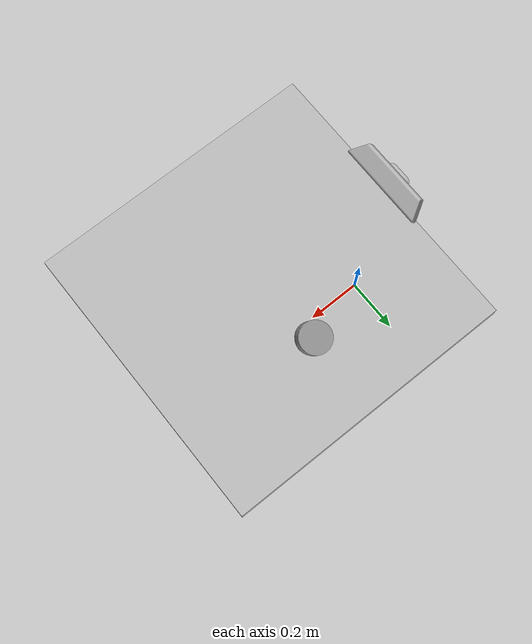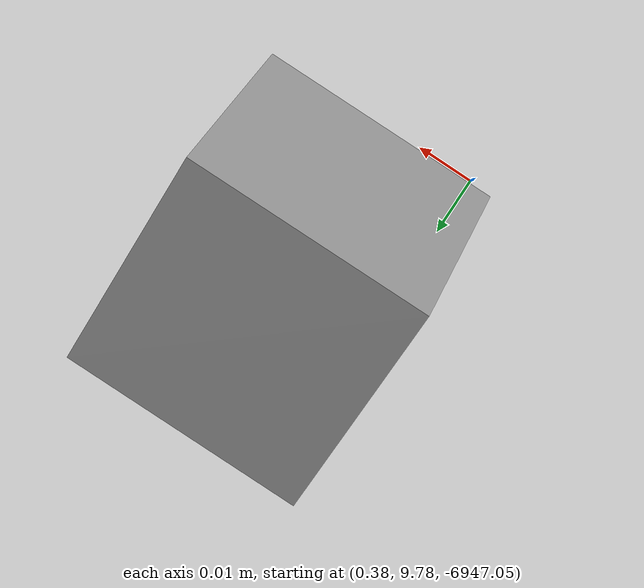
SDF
<sdf version="1.6">
 <world name="default">
  <light name="sun" type="directional">
   <pose>0 0 10 0 -0 0</pose>
   <diffuse>0.8 0.8 0.8 1</diffuse>
   <specular>0.1 0.1 0.1 1</specular>
   <attenuation>
    <range>1000</range>
    <constant>0.9</constant>
    <linear>0.01</linear>
    <quadratic>0.001</quadratic>
   </attenuation>
   <direction>-0.5 0.5 -1</direction>
  </light>
  <gravity>0 0 -9.8</gravity>
  <magnetic_field>6e-06 2.3e-05 -4.2e-05</magnetic_field>
  <atmosphere type="adiabatic"/>
  <physics name="default_physics" default="0" type="ode">
   <max_step_size>0.001</max_step_size>
   <real_time_factor>1</real_time_factor>
   <real_time_update_rate>1000</real_time_update_rate>
  </physics>
  <scene><ambient>0.4 0.4 0.4 1</ambient><background>0.7 0.7 0.7 1</background><shadows>1</shadows></scene>
  <spherical_coordinates>
   <surface_model>EARTH_WGS84</surface_model>
   <latitude_deg>0</latitude_deg>
   <longitude_deg>0</longitude_deg>
   <elevation>0</elevation>
   <heading_deg>0</heading_deg>
  </spherical_coordinates>
  <model name="kinect_ros">
   <link name="link">
    <inertial>
     <mass>0.1</mass>
     <inertia><ixx>1</ixx><ixy>0</ixy><ixz>0</ixz><iyy>1</iyy><iyz>0</iyz><izz>1</izz></inertia>
    </inertial>
    <sensor name="camera" type="depth">
     <update_rate>20</update_rate>
     <camera name="__default__">
      <horizontal_fov>1.0472</horizontal_fov>
      <image><width>640</width><height>480</height><format>R8G8B8</format></image>
      <clip><near>0.05</near><far>3</far></clip>
     </camera>
     <plugin name="camera_plugin" filename="libgazebo_ros_openni_kinect.so">
      <baseline>0.2</baseline>
      <alwaysOn>true</alwaysOn>
      <updateRate>0.0</updateRate>
      <cameraName>camera_ir</cameraName>
      <imageTopicName>/camera/depth/image_raw</imageTopicName>
      <cameraInfoTopicName>/camera/depth/camera_info</cameraInfoTopicName>
      <depthImageTopicName>/camera/depth/image_raw</depthImageTopicName>
      <depthImageInfoTopicName>/camera/depth/camera_info</depthImageInfoTopicName>
      <pointCloudTopicName>/camera/depth/points</pointCloudTopicName>
      <frameName>camera_link</frameName>
      <pointCloudCutoff>0.05</pointCloudCutoff>
      <distortionK1>0</distortionK1>
      <distortionK2>0</distortionK2>
      <distortionK3>0</distortionK3>
      <distortionT1>0</distortionT1>
      <distortionT2>0</distortionT2>
      <CxPrime>0</CxPrime>
      <Cx>0</Cx>
      <Cy>0</Cy>
      <focalLength>0</focalLength>
      <hackBaseline>0</hackBaseline>
     </plugin>
    </sensor>
    <visual name="visual">
     <geometry><mesh><uri>model://kinect/meshes/kinect.dae</uri><scale>1 1 1</scale></mesh></geometry>
    </visual>
    <collision name="collision">
     <geometry><box><size>0.073 0.276 0.072</size></box></geometry>
     <surface>
      <friction>
       <ode><mu>1</mu><mu2>1</mu2><fdir1>0 0 0</fdir1><slip1>0</slip1><slip2>0</slip2></ode>
       <torsional>
        <coefficient>1</coefficient>
        <patch_radius>0</patch_radius>
        <surface_radius>0</surface_radius>
        <use_patch_radius>1</use_patch_radius>
        <ode><slip>0</slip></ode>
       </torsional>
      </friction>
      <bounce><restitution_coefficient>0</restitution_coefficient><threshold>1e+06</threshold></bounce>
      <contact>
       <collide_without_contact>0</collide_without_contact>
       <collide_without_contact_bitmask>1</collide_without_contact_bitmask>
       <collide_bitmask>1</collide_bitmask>
       <ode>
        <soft_cfm>0</soft_cfm>
        <soft_erp>0.2</soft_erp>
        <kp>1e+13</kp>
        <kd>1</kd>
        <max_vel>0.01</max_vel>
        <min_depth>0</min_depth>
       </ode>
       <bullet>
        <split_impulse>1</split_impulse>
        <split_impulse_penetration_threshold>-0.01</split_impulse_penetration_threshold>
        <soft_cfm>0</soft_cfm>
        <soft_erp>0.2</soft_erp>
        <kp>1e+13</kp>
        <kd>1</kd>
       </bullet>
      </contact>
     </surface>
    </collision>
   </link>
   <static>1</static>
   <pose>0 0 0.9 0 0.520001 0</pose>
  </model>
  <model name="cafe_table_big">
   <link name="link">
    <inertial>
     <inertia><ixx>nan</ixx><ixy>0</ixy><ixz>0</ixz><iyy>nan</iyy><iyz>0</iyz><izz>nan</izz></inertia>
     <mass>0</mass>
    </inertial>
    <visual name="visual">
     <geometry><mesh><uri>model://cafe_table/meshes/cafe_table.dae</uri><scale>1 1 1</scale></mesh></geometry>
    </visual>
    <collision name="surface">
     <pose>0 0 0.755 0 -0 0</pose>
     <geometry><box><size>3.3615 2.37622 0.04</size></box></geometry>
     <surface>
      <friction>
       <ode><mu>1</mu><mu2>1</mu2><fdir1>0 0 0</fdir1><slip1>0</slip1><slip2>0</slip2></ode>
       <torsional>
        <coefficient>1</coefficient>
        <patch_radius>0</patch_radius>
        <surface_radius>0</surface_radius>
        <use_patch_radius>1</use_patch_radius>
        <ode><slip>0</slip></ode>
       </torsional>
      </friction>
      <bounce><restitution_coefficient>0</restitution_coefficient><threshold>1e+06</threshold></bounce>
      <contact>
       <collide_without_contact>0</collide_without_contact>
       <collide_without_contact_bitmask>1</collide_without_contact_bitmask>
       <collide_bitmask>1</collide_bitmask>
       <ode>
        <soft_cfm>0</soft_cfm>
        <soft_erp>0.2</soft_erp>
        <kp>1e+13</kp>
        <kd>1</kd>
        <max_vel>0.01</max_vel>
        <min_depth>0</min_depth>
       </ode>
       <bullet>
        <split_impulse>1</split_impulse>
        <split_impulse_penetration_threshold>-0.01</split_impulse_penetration_threshold>
        <soft_cfm>0</soft_cfm>
        <soft_erp>0.2</soft_erp>
        <kp>1e+13</kp>
        <kd>1</kd>
       </bullet>
      </contact>
     </surface>
    </collision>
    <collision name="column">
     <pose>0 0 0.37 0 -0 0</pose>
     <geometry><box><size>0.154636 0.109311 0.74</size></box></geometry>
     <surface>
      <friction>
       <ode><mu>1</mu><mu2>1</mu2><fdir1>0 0 0</fdir1><slip1>0</slip1><slip2>0</slip2></ode>
       <torsional>
        <coefficient>1</coefficient>
        <patch_radius>0</patch_radius>
        <surface_radius>0</surface_radius>
        <use_patch_radius>1</use_patch_radius>
        <ode><slip>0</slip></ode>
       </torsional>
      </friction>
      <bounce><restitution_coefficient>0</restitution_coefficient><threshold>1e+06</threshold></bounce>
      <contact>
       <collide_without_contact>0</collide_without_contact>
       <collide_without_contact_bitmask>1</collide_without_contact_bitmask>
       <collide_bitmask>1</collide_bitmask>
       <ode>
        <soft_cfm>0</soft_cfm>
        <soft_erp>0.2</soft_erp>
        <kp>1e+13</kp>
        <kd>1</kd>
        <max_vel>0.01</max_vel>
        <min_depth>0</min_depth>
       </ode>
       <bullet>
        <split_impulse>1</split_impulse>
        <split_impulse_penetration_threshold>-0.01</split_impulse_penetration_threshold>
        <soft_cfm>0</soft_cfm>
        <soft_erp>0.2</soft_erp>
        <kp>1e+13</kp>
        <kd>1</kd>
       </bullet>
      </contact>
     </surface>
    </collision>
    <collision name="base">
     <pose>0 0 0.02 0 -0 0</pose>
     <geometry><box><size>2.06182 1.45748 0.04</size></box></geometry>
     <surface>
      <friction>
       <ode><mu>1</mu><mu2>1</mu2><fdir1>0 0 0</fdir1><slip1>0</slip1><slip2>0</slip2></ode>
       <torsional>
        <coefficient>1</coefficient>
        <patch_radius>0</patch_radius>
        <surface_radius>0</surface_radius>
        <use_patch_radius>1</use_patch_radius>
        <ode><slip>0</slip></ode>
       </torsional>
      </friction>
      <bounce><restitution_coefficient>0</restitution_coefficient><threshold>1e+06</threshold></bounce>
      <contact>
       <collide_without_contact>0</collide_without_contact>
       <collide_without_contact_bitmask>1</collide_without_contact_bitmask>
       <collide_bitmask>1</collide_bitmask>
       <ode>
        <soft_cfm>0</soft_cfm>
        <soft_erp>0.2</soft_erp>
        <kp>1e+13</kp>
        <kd>1</kd>
        <max_vel>0.01</max_vel>
        <min_depth>0</min_depth>
       </ode>
       <bullet>
        <split_impulse>1</split_impulse>
        <split_impulse_penetration_threshold>-0.01</split_impulse_penetration_threshold>
        <soft_cfm>0</soft_cfm>
        <soft_erp>0.2</soft_erp>
        <kp>1e+13</kp>
        <kd>1</kd>
       </bullet>
      </contact>
     </surface>
    </collision>
   </link>
   <static>1</static>
   <pose>0.4 0 0 0 -0 0</pose>
  </model>
  <model name="small_cube1">
   <link name="link">
    <inertial>
     <mass>1</mass>
     <inertia>
      <ixx>0.166667</ixx>
      <ixy>0</ixy>
      <ixz>0</ixz>
      <iyy>0.166667</iyy>
      <iyz>0</iyz>
      <izz>0.166667</izz>
     </inertia>
    </inertial>
    <visual name="visual">
     <geometry><box><size>0.04 0.04 0.04</size></box></geometry>
     <material>
      <script><name>Gazebo/Grey</name><uri>file://media/materials/scripts/gazebo.material</uri></script>
      <ambient>0.3 0.3 0.3 1</ambient>
      <diffuse>0.7 0.7 0.7 1</diffuse>
      <specular>0.01 0.01 0.01 1</specular>
      <emissive>0 0 0 1</emissive>
      <shader type="vertex"><normal_map>__default__</normal_map></shader>
     </material>
    </visual>
    <collision name="collision">
     <geometry><box><size>0.04 0.04 0.04</size></box></geometry>
     <surface>
      <friction>
       <ode><mu>1</mu><mu2>1</mu2><fdir1>0 0 0</fdir1><slip1>0</slip1><slip2>0</slip2></ode>
       <torsional>
        <coefficient>1</coefficient>
        <patch_radius>0</patch_radius>
        <surface_radius>0</surface_radius>
        <use_patch_radius>1</use_patch_radius>
        <ode><slip>0</slip></ode>
       </torsional>
      </friction>
      <bounce><restitution_coefficient>0</restitution_coefficient><threshold>1e+06</threshold></bounce>
      <contact>
       <collide_without_contact>0</collide_without_contact>
       <collide_without_contact_bitmask>1</collide_without_contact_bitmask>
       <collide_bitmask>1</collide_bitmask>
       <ode>
        <soft_cfm>0</soft_cfm>
        <soft_erp>0.2</soft_erp>
        <kp>1e+13</kp>
        <kd>1</kd>
        <max_vel>0.01</max_vel>
        <min_depth>0</min_depth>
       </ode>
       <bullet>
        <split_impulse>1</split_impulse>
        <split_impulse_penetration_threshold>-0.01</split_impulse_penetration_threshold>
        <soft_cfm>0</soft_cfm>
        <soft_erp>0.2</soft_erp>
        <kp>1e+13</kp>
        <kd>1</kd>
       </bullet>
      </contact>
     </surface>
    </collision>
   </link>
   <static>1</static>
   <pose>0.397283 9.80988 -6947.02 1.01182 0.001715 -0.00121</pose>
  </model>
  <model name="small_cylinder_0">
   <link name="link">
    <inertial>
     <mass>0.02</mass>
     <inertia>
      <ixx>5.83e-05</ixx>
      <ixy>0</ixy>
      <ixz>0</ixz>
      <iyy>5.83e-05</iyy>
      <iyz>0</iyz>
      <izz>5.83e-05</izz>
     </inertia>
    </inertial>
    <visual name="visual">
     <geometry><cylinder><radius>0.05</radius><length>0.06</length></cylinder></geometry>
     <material>
      <script><name>Gazebo/Grey</name><uri>file://media/materials/scripts/gazebo.material</uri></script>
      <ambient>0.3 0.3 0.3 1</ambient>
      <diffuse>0.7 0.7 0.7 1</diffuse>
      <specular>0.01 0.01 0.01 1</specular>
      <emissive>0 0 0 1</emissive>
      <shader type="vertex"><normal_map>__default__</normal_map></shader>
     </material>
    </visual>
    <collision name="collision">
     <geometry><cylinder><radius>0.05</radius><length>0.06</length></cylinder></geometry>
     <surface>
      <friction>
       <ode><mu>1</mu><mu2>1</mu2><fdir1>0 0 0</fdir1><slip1>0</slip1><slip2>0</slip2></ode>
       <torsional>
        <coefficient>1</coefficient>
        <patch_radius>0</patch_radius>
        <surface_radius>0</surface_radius>
        <use_patch_radius>1</use_patch_radius>
        <ode><slip>0</slip></ode>
       </torsional>
      </friction>
      <bounce><restitution_coefficient>0</restitution_coefficient><threshold>1e+06</threshold></bounce>
      <contact>
       <collide_without_contact>0</collide_without_contact>
       <collide_without_contact_bitmask>1</collide_without_contact_bitmask>
       <collide_bitmask>1</collide_bitmask>
       <ode>
        <soft_cfm>0</soft_cfm>
        <soft_erp>0.2</soft_erp>
        <kp>1e+13</kp>
        <kd>1</kd>
        <max_vel>0.01</max_vel>
        <min_depth>0</min_depth>
       </ode>
       <bullet>
        <split_impulse>1</split_impulse>
        <split_impulse_penetration_threshold>-0.01</split_impulse_penetration_threshold>
        <soft_cfm>0</soft_cfm>
        <soft_erp>0.2</soft_erp>
        <kp>1e+13</kp>
        <kd>1</kd>
       </bullet>
      </contact>
     </surface>
    </collision>
   </link>
   <static>1</static>
   <pose>0.4 0.2 0.79 -0.271647 0 0</pose>
  </model>
 </world>
</sdf>
